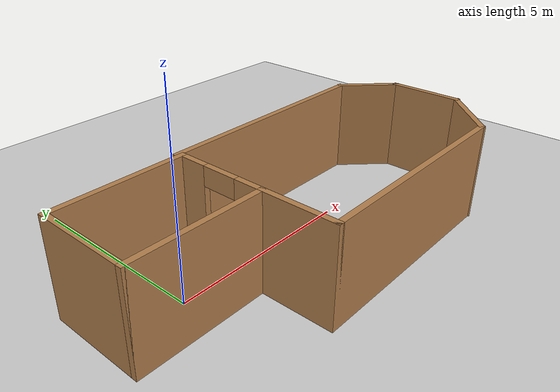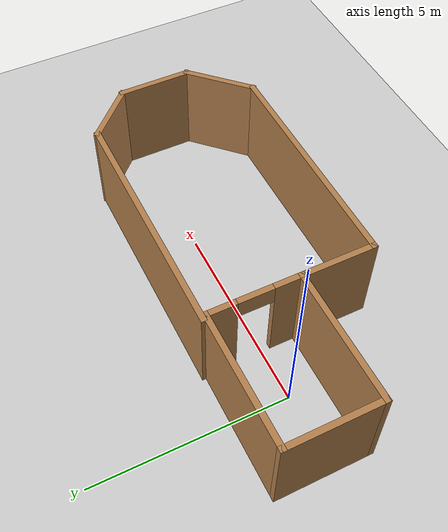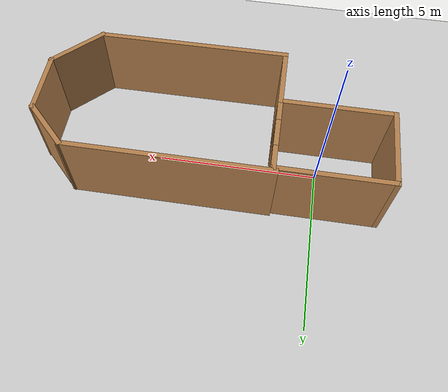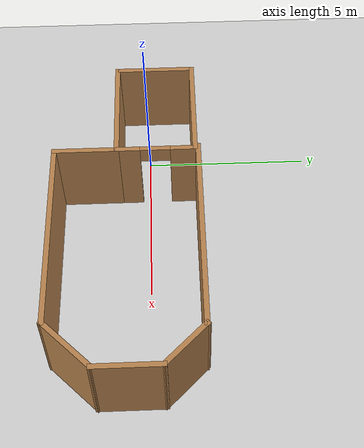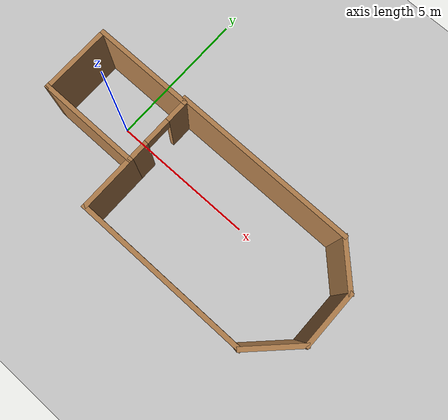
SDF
<sdf version="1.7">
 <world name="default">
  <light name="sun" type="directional">
   <pose>0 0 10 0 -0 0</pose>
   <diffuse>0.8 0.8 0.8 1</diffuse>
   <specular>0.2 0.2 0.2 1</specular>
   <attenuation>
    <range>1000</range>
    <constant>0.9</constant>
    <linear>0.01</linear>
    <quadratic>0.001</quadratic>
   </attenuation>
   <direction>-0.5 0.1 -0.9</direction>
   <spot><inner_angle>0</inner_angle><outer_angle>0</outer_angle><falloff>0</falloff></spot>
  </light>
  <model name="ground_plane">
   <static>1</static>
   <link name="link">
    <collision name="collision">
     <geometry><plane><normal>0 0 1</normal><size>100 100</size></plane></geometry>
     <surface>
      <contact><collide_bitmask>65535</collide_bitmask></contact>
      <friction><ode><mu>100</mu><mu2>50</mu2></ode></friction>
     </surface>
    </collision>
    <visual name="visual">
     <cast_shadows>0</cast_shadows>
     <geometry><plane><normal>0 0 1</normal><size>100 100</size></plane></geometry>
     <material>
      <script><uri>file://media/materials/scripts/gazebo.material</uri><name>Gazebo/Grey</name></script>
     </material>
    </visual>
   </link>
  </model>
  <gravity>0 0 -9.8</gravity>
  <magnetic_field>6e-06 2.3e-05 -4.2e-05</magnetic_field>
  <atmosphere type="adiabatic"/>
  <physics type="ode">
   <max_step_size>0.001</max_step_size>
   <real_time_factor>1</real_time_factor>
   <real_time_update_rate>1000</real_time_update_rate>
  </physics>
  <scene><ambient>0.4 0.4 0.4 1</ambient><background>0.7 0.7 0.7 1</background><shadows>1</shadows></scene>
  <audio><device>default</device></audio>
  <spherical_coordinates>
   <surface_model>EARTH_WGS84</surface_model>
   <latitude_deg>0</latitude_deg>
   <longitude_deg>0</longitude_deg>
   <elevation>0</elevation>
   <heading_deg>0</heading_deg>
  </spherical_coordinates>
  <model name="try">
   <pose>3.34837 -0.634084 0 0 -0 0</pose>
   <link name="Wall_14">
    <collision name="Wall_14_Collision">
     <geometry><box><size>3.5 0.15 2.5</size></box></geometry>
     <pose>0 0 1.25 0 -0 0</pose>
    </collision>
    <visual name="Wall_14_Visual">
     <pose>0 0 1.25 0 -0 0</pose>
     <geometry><box><size>3.5 0.15 2.5</size></box></geometry>
     <material>
      <script><uri>file://media/materials/scripts/gazebo.material</uri><name>Gazebo/Wood</name></script>
      <ambient>1 1 1 1</ambient>
     </material>
     <meta><layer>0</layer></meta>
    </visual>
    <pose>-3.59461 -0.294759 0 0 -0 0</pose>
   </link>
   <link name="Wall_16">
    <collision name="Wall_16_Collision">
     <geometry><box><size>2.5 0.15 2.5</size></box></geometry>
     <pose>0 0 1.25 0 -0 0</pose>
    </collision>
    <visual name="Wall_16_Visual">
     <pose>0 0 1.25 0 -0 0</pose>
     <geometry><box><size>2.5 0.15 2.5</size></box></geometry>
     <material>
      <script><uri>file://media/materials/scripts/gazebo.material</uri><name>Gazebo/Wood</name></script>
      <ambient>1 1 1 1</ambient>
     </material>
     <meta><layer>0</layer></meta>
    </visual>
    <pose>-5.26961 0.880241 0 0 -0 1.5708</pose>
   </link>
   <link name="Wall_17">
    <collision name="Wall_17_Collision">
     <geometry><box><size>3.5 0.15 2.5</size></box></geometry>
     <pose>0 0 1.25 0 -0 0</pose>
    </collision>
    <visual name="Wall_17_Visual">
     <pose>0 0 1.25 0 -0 0</pose>
     <geometry><box><size>3.5 0.15 2.5</size></box></geometry>
     <material>
      <script><uri>file://media/materials/scripts/gazebo.material</uri><name>Gazebo/Wood</name></script>
      <ambient>1 1 1 1</ambient>
     </material>
     <meta><layer>0</layer></meta>
    </visual>
    <pose>-3.59461 2.05524 0 0 -0 0</pose>
   </link>
   <link name="Wall_18">
    <pose>-1.91961 0.880241 0 0 -0 -1.5708</pose>
    <visual name="Wall_18_Visual_0">
     <pose>-0.839144 0 1.25 0 -0 0</pose>
     <geometry><box><size>0.821713 0.15 2.5</size></box></geometry>
     <material>
      <script><uri>file://media/materials/scripts/gazebo.material</uri><name>Gazebo/Wood</name></script>
      <ambient>1 1 1 1</ambient>
     </material>
     <meta><layer>0</layer></meta>
    </visual>
    <collision name="Wall_18_Collision_0">
     <geometry><box><size>0.821713 0.15 2.5</size></box></geometry>
     <pose>-0.839144 0 1.25 0 -0 0</pose>
    </collision>
    <visual name="Wall_18_Visual_1">
     <pose>0.860856 0 1.25 0 -0 0</pose>
     <geometry><box><size>0.778287 0.15 2.5</size></box></geometry>
     <material>
      <script><uri>file://media/materials/scripts/gazebo.material</uri><name>Gazebo/Wood</name></script>
      <ambient>1 1 1 1</ambient>
     </material>
     <meta><layer>0</layer></meta>
    </visual>
    <collision name="Wall_18_Collision_1">
     <geometry><box><size>0.778287 0.15 2.5</size></box></geometry>
     <pose>0.860856 0 1.25 0 -0 0</pose>
    </collision>
    <visual name="Wall_18_Visual_2">
     <pose>0.021713 0 2.25 0 -0 0</pose>
     <geometry><box><size>0.9 0.15 0.5</size></box></geometry>
     <material>
      <script><uri>file://media/materials/scripts/gazebo.material</uri><name>Gazebo/Wood</name></script>
      <ambient>1 1 1 1</ambient>
     </material>
     <meta><layer>0</layer></meta>
    </visual>
    <collision name="Wall_18_Collision_2">
     <geometry><box><size>0.9 0.15 0.5</size></box></geometry>
     <pose>0.021713 0 2.25 0 -0 0</pose>
    </collision>
   </link>
   <link name="Wall_19">
    <collision name="Wall_19_Collision">
     <geometry><box><size>2 0.15 2.5</size></box></geometry>
     <pose>0 0 1.25 0 -0 0</pose>
    </collision>
    <visual name="Wall_19_Visual">
     <pose>0 0 1.25 0 -0 0</pose>
     <geometry><box><size>2 0.15 2.5</size></box></geometry>
     <material>
      <script><uri>file://media/materials/scripts/gazebo.material</uri><name>Gazebo/Wood</name></script>
      <ambient>1 1 1 1</ambient>
     </material>
     <meta><layer>0</layer></meta>
    </visual>
    <pose>-1.91961 -1.21976 0 0 -0 -1.5708</pose>
   </link>
   <link name="Wall_20">
    <collision name="Wall_20_Collision">
     <geometry><box><size>6 0.15 2.5</size></box></geometry>
     <pose>0 0 1.25 0 -0 0</pose>
    </collision>
    <visual name="Wall_20_Visual">
     <pose>0 0 1.25 0 -0 0</pose>
     <geometry><box><size>6 0.15 2.5</size></box></geometry>
     <material>
      <script><uri>file://media/materials/scripts/gazebo.material</uri><name>Gazebo/Wood</name></script>
      <ambient>1 1 1 1</ambient>
     </material>
     <meta><layer>0</layer></meta>
    </visual>
    <pose>1.00539 -2.14476 0 0 -0 0</pose>
   </link>
   <link name="Wall_21">
    <collision name="Wall_21_Collision">
     <geometry><box><size>2 0.15 2.5</size></box></geometry>
     <pose>0 0 1.25 0 -0 0</pose>
    </collision>
    <visual name="Wall_21_Visual">
     <pose>0 0 1.25 0 -0 0</pose>
     <geometry><box><size>2 0.15 2.5</size></box></geometry>
     <material>
      <script><uri>file://media/materials/scripts/gazebo.material</uri><name>Gazebo/Wood</name></script>
      <ambient>1 1 1 1</ambient>
     </material>
     <meta><layer>0</layer></meta>
    </visual>
    <pose>4.58447 -1.49069 0 0 -0 0.785398</pose>
   </link>
   <link name="Wall_22">
    <collision name="Wall_22_Collision">
     <geometry><box><size>2 0.15 2.5</size></box></geometry>
     <pose>0 0 1.25 0 -0 0</pose>
    </collision>
    <visual name="Wall_22_Visual">
     <pose>0 0 1.25 0 -0 0</pose>
     <geometry><box><size>2 0.15 2.5</size></box></geometry>
     <material>
      <script><uri>file://media/materials/scripts/gazebo.material</uri><name>Gazebo/Wood</name></script>
      <ambient>1 1 1 1</ambient>
     </material>
     <meta><layer>0</layer></meta>
    </visual>
    <pose>5.23854 0.088388 0 0 -0 1.5708</pose>
   </link>
   <link name="Wall_23">
    <collision name="Wall_23_Collision">
     <geometry><box><size>1.75 0.15 2.5</size></box></geometry>
     <pose>0 0 1.25 0 -0 0</pose>
    </collision>
    <visual name="Wall_23_Visual">
     <pose>0 0 1.25 0 -0 0</pose>
     <geometry><box><size>1.75 0.15 2.5</size></box></geometry>
     <material>
      <script><uri>file://media/materials/scripts/gazebo.material</uri><name>Gazebo/Wood</name></script>
      <ambient>1 1 1 1</ambient>
     </material>
     <meta><layer>0</layer></meta>
    </visual>
    <pose>4.67286 1.57907 0 0 -0 2.35619</pose>
   </link>
   <link name="Wall_24">
    <collision name="Wall_24_Collision">
     <geometry><box><size>6.25 0.15 2.5</size></box></geometry>
     <pose>0 0 1.25 0 -0 0</pose>
    </collision>
    <visual name="Wall_24_Visual">
     <pose>0 0 1.25 0 -0 0</pose>
     <geometry><box><size>6.25 0.15 2.5</size></box></geometry>
     <material>
      <script><uri>file://media/materials/scripts/gazebo.material</uri><name>Gazebo/Wood</name></script>
      <ambient>1 1 1 1</ambient>
     </material>
     <meta><layer>0</layer></meta>
    </visual>
    <pose>1.05717 2.14476 0 0 -0 3.14159</pose>
   </link>
   <static>1</static>
  </model>
 </world>
</sdf>
